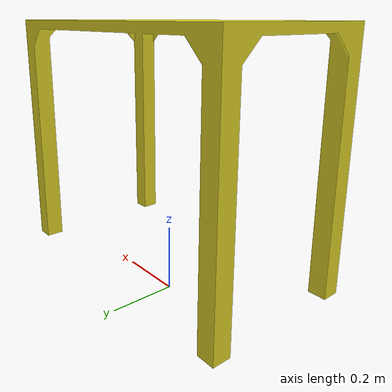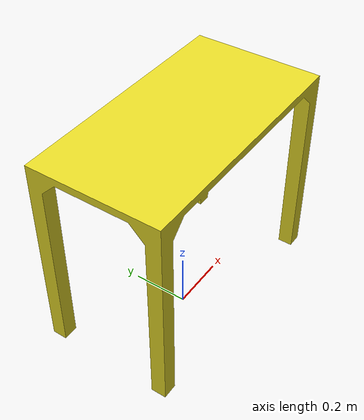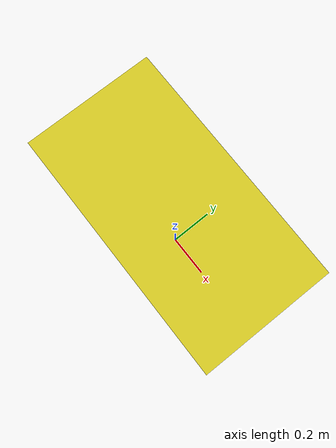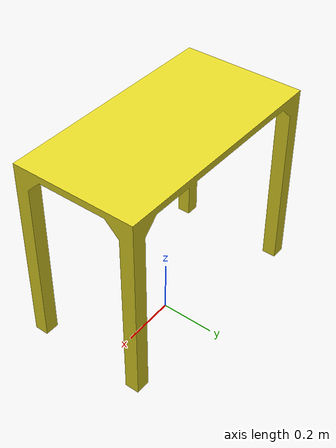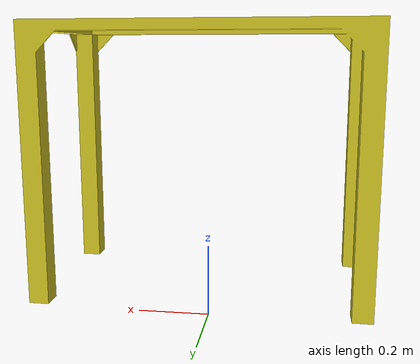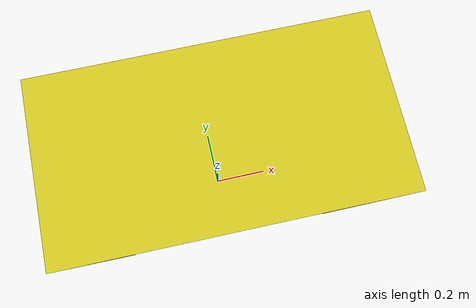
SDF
<?xml version="1.0" ?>
<sdf version="1.5">
  <model name="psa_table">
    <link name="link">
      <pose>0 0 0.1 0 0 1.57079632679</pose>
      <inertial>
        <pose>0 0 0.7 0 0 0</pose>
        <mass>14.0</mass>
	  <inertia>
	    <ixx>0.9566667</ixx>
	    <ixy>0.0</ixy>
	    <ixz>0.0</ixz>
	    <iyy>0.2479167</iyy>
	    <iyz>0.0</iyz>
	    <izz>1.18125</izz>
	  </inertia>
      </inertial>
      <collision name="collision">
        <pose>0 0 0 0 0 0</pose>
        <geometry>
          <mesh>
            <uri>model://PSA_Table/meshes/PSA_Table.STL</uri>
          </mesh>
        </geometry>
      </collision>
      <visual name="visual">
        <pose>0 0 0 0 0 0</pose>
        <geometry>
          <mesh>
            <uri>model://PSA_Table/meshes/PSA_Table.STL</uri>
          </mesh>
        </geometry>
        <material>
          <script>
            <uri>file://media/materials/scripts/gazebo.material</uri>
            <name>Gazebo/Yellow</name>
          </script>
        </material>
      </visual>
    </link>
  </model>
</sdf>
